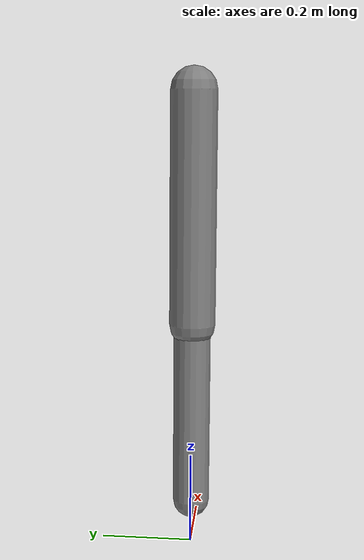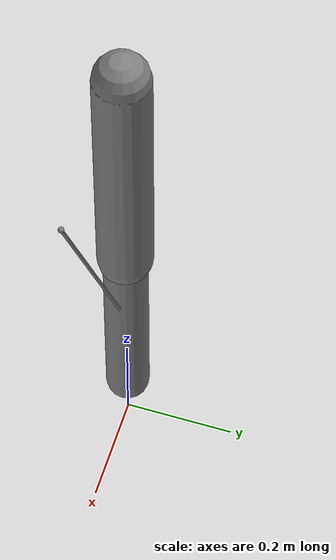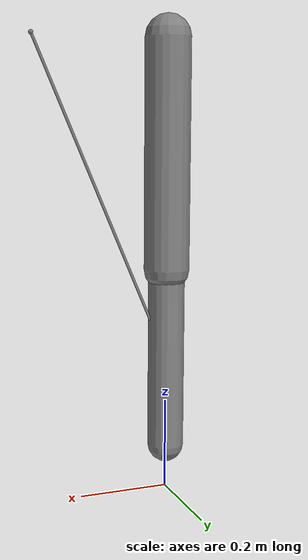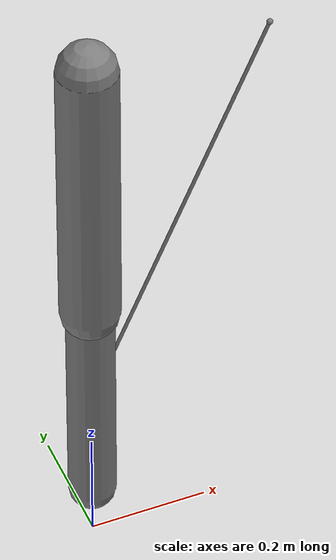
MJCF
<mujoco model="dt39_spatial_nondegen">
        <worldbody>
            <body name="upper" pos="0 0 1">
                <joint name="shoulder" type="hinge" axis="0 1 0"/>
                <geom type="capsule" size="0.05" fromto="0 0 0 0 0 -0.5"/>
                <site name="s1" pos="0.3 0 0"/>
                <body name="lower" pos="0 0 -0.5">
                    <joint name="elbow" type="hinge" axis="0 1 0"/>
                    <geom type="capsule" size="0.04" fromto="0 0 0 0 0 -0.4"/>
                    <site name="s2" pos="0 0 -0.2"/>
                </body>
            </body>
        </worldbody>
        <tendon>
            <spatial name="t1">
                <site site="s1"/>
                <site site="s2"/>
            </spatial>
        </tendon>
    </mujoco>
